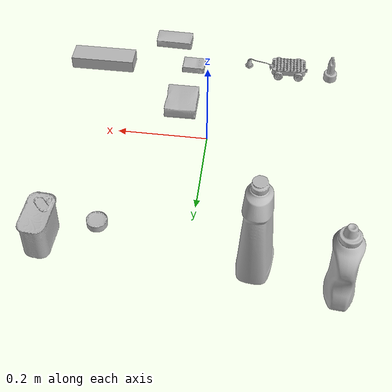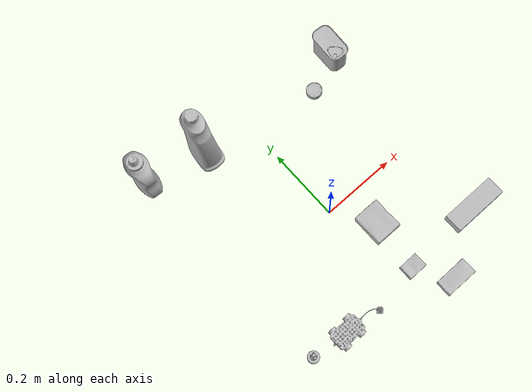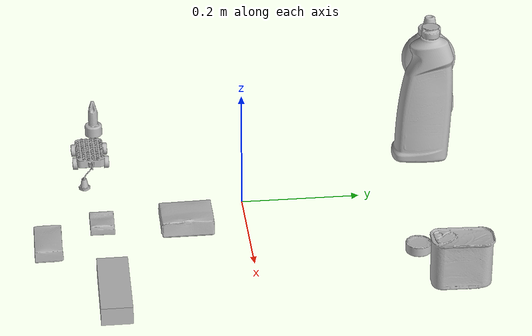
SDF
<?xml version="1.0" ?>
<sdf version="1.4">
  <world name="default">
    <light name="light1" type="point">
      <pose>0 0 1 0 0 0</pose>
      <diffuse>3 3 3 1</diffuse>
      <specular>3 3 3 1</specular>
    </light>
    <light name="light2" type="point">
      <pose>0 0.5 2 0 0 0</pose>
      <diffuse>1 1 1 1</diffuse>
      <specular>1 1 1 1</specular>
    </light>
    <light name="light3" type="point">
      <pose>0 0.5 2 0 0 0</pose>
      <diffuse>3 3 3 1</diffuse>
      <specular>3 3 3 1</specular>
    </light>
    <scene>
      <ambient>0.7 0.7 0.7</ambient>
    </scene>
    <model name="bottle1">
      <link name="link_bottle1">
        <collision name="default">
          <geometry>
            <mesh>
              <uri>model://bleach_cleanser/collision_meshes/collision.obj</uri>
              <scale>1.0 1.0 1.0</scale>
            </mesh>
          </geometry>
          <surface>
            <friction>
              <ode>
                <mu>0.5</mu>
                <mu2>0.5</mu2>
              </ode>
            </friction>
          </surface>
        </collision>
        <visual name="default">
          <geometry>
            <mesh>
              <uri>model://bleach_cleanser/visual_meshes/visual.dae</uri>
              <scale>1.0 1.0 1.0</scale>
            </mesh>
          </geometry>
        </visual>
        <inertial>
          <mass>0.8435376882553101</mass>
          <pose>0.00012193185102660209 0.0037838835269212723 -0.02442161925137043 -0.0738167136291003 0.00042011570398771517 -0.0068750683244174</pose>
          <inertia>
            <ixx>0.0041056215</ixx>
            <iyy>0.0038258375</iyy>
            <izz>0.0007019545</izz>
            <ixy>0</ixy>
            <ixz>0</ixz>
            <iyz>0</iyz>
          </inertia>
        </inertial>
      </link>
      <pose>-0.1293705701828003 0.32986220717430115 0.125770702958107 -0.0022205969148472527 0.002888732046555626 -0.08950297327741501</pose>
    </model>
    <model name="bottle2">
      <link name="link_bottle2">
        <collision name="default">
          <geometry>
            <mesh>
              <uri>model://mustard_bottle/collision_meshes/collision.obj</uri>
              <scale>1.0 1.0 1.0</scale>
            </mesh>
          </geometry>
          <surface>
            <friction>
              <ode>
                <mu>0.5</mu>
                <mu2>0.5</mu2>
              </ode>
            </friction>
          </surface>
        </collision>
        <visual name="default">
          <geometry>
            <mesh>
              <uri>model://mustard_bottle/visual_meshes/visual.dae</uri>
              <scale>1.0 1.0 1.0</scale>
            </mesh>
          </geometry>
        </visual>
        <inertial>
          <mass>0.5862947106361389</mass>
          <pose>0.0005032453336752951 -0.00015647400869056582 -0.01747579500079155 0.0004182326333961274 0.0009465780125852031 0.02485369627950655</pose>
          <inertia>
            <ixx>0.0016280604</ixx>
            <iyy>0.001428485</iyy>
            <izz>0.00042907606</izz>
            <ixy>0</ixy>
            <ixz>0</ixz>
            <iyz>0</iyz>
          </inertia>
        </inertial>
      </link>
      <pose>-0.2909773588180542 0.3694293797016144 0.09614808112382889 0.0010634771575790168 -0.0010442996821329723 -0.07642507765330066</pose>
    </model>
    <model name="toy1">
      <link name="link_toy1">
        <collision name="default">
          <geometry>
            <mesh>
              <uri>model://d_toy_airplane/collision_meshes/collision.obj</uri>
              <scale>1.0 1.0 1.0</scale>
            </mesh>
          </geometry>
          <surface>
            <friction>
              <ode>
                <mu>0.5</mu>
                <mu2>0.5</mu2>
              </ode>
            </friction>
          </surface>
        </collision>
        <visual name="default">
          <geometry>
            <mesh>
              <uri>model://d_toy_airplane/visual_meshes/visual.dae</uri>
              <scale>1.0 1.0 1.0</scale>
            </mesh>
          </geometry>
        </visual>
        <inertial>
          <mass>0.016342557966709137</mass>
          <pose>9.410292841494083e-05 -5.809347931062803e-05 -0.011728093959391117 0.0002665850352305412 0.004678995185611379 0.5193821656772198</pose>
          <inertia>
            <ixx>4.8991824e-06</ixx>
            <iyy>4.9028777e-06</iyy>
            <izz>1.4790946e-06</izz>
            <ixy>0</ixy>
            <ixz>0</ixz>
            <iyz>0</iyz>
          </inertia>
        </inertial>
      </link>
      <pose>-0.26999568939208984 -0.23996877670288086 0.03333889693021774 3.2641392143889736e-05 -0.00011554647266761172 0.05990463532322526</pose>
    </model>
    <model name="toy2">
      <link name="link_toy2">
        <collision name="default">
          <geometry>
            <mesh>
              <uri>model://g_lego_duplo/collision_meshes/collision.obj</uri>
              <scale>0.5 0.5 0.5</scale>
            </mesh>
          </geometry>
          <surface>
            <friction>
              <ode>
                <mu>0.5</mu>
                <mu2>0.5</mu2>
              </ode>
            </friction>
          </surface>
        </collision>
        <visual name="default">
          <geometry>
            <mesh>
              <uri>model://g_lego_duplo/visual_meshes/visual.dae</uri>
              <scale>0.5 0.5 0.5</scale>
            </mesh>
          </geometry>
        </visual>
        <inertial>
          <mass>0.06075087562203407</mass>
          <pose>-0.02502383105456829 0.0008777320035733283 0.0019403373589739203 0.010962969944672394 0.038108282316868566 -0.09653022106038826</pose>
          <inertia>
            <ixx>2.2007183e-05</ixx>
            <iyy>6.65348e-05</iyy>
            <izz>8.323752e-05</izz>
            <ixy>0</ixy>
            <ixz>0</ixz>
            <iyz>0</iyz>
          </inertia>
        </inertial>
      </link>
      <pose>-0.13960640132427216 -0.25184720754623413 0.014996824786067009 -6.240008379361557e-05 -0.0036883769569304057 0.022327799401519407</pose>
    </model>
    <model name="can1">
      <link name="link_can1">
        <collision name="default">
          <geometry>
            <mesh>
              <uri>model://potted_meat_can/collision_meshes/collision.obj</uri>
              <scale>1.0 1.0 1.0</scale>
            </mesh>
          </geometry>
          <surface>
            <friction>
              <ode>
                <mu>0.5</mu>
                <mu2>0.5</mu2>
              </ode>
            </friction>
          </surface>
        </collision>
        <visual name="default">
          <geometry>
            <mesh>
              <uri>model://potted_meat_can/visual_meshes/visual.dae</uri>
              <scale>1.0 1.0 1.0</scale>
            </mesh>
          </geometry>
        </visual>
        <inertial>
          <mass>0.20078136026859283</mass>
          <pose>0.00022888144303578883 -5.9891190176131204e-05 -0.0006367445457726717 -0.02809335636395505 -0.007232596981483405 0.015406261474000347</pose>
          <inertia>
            <ixx>0.0002582842</ixx>
            <iyy>0.00015692727</iyy>
            <izz>0.0001878526</izz>
            <ixy>0</ixy>
            <ixz>0</ixz>
            <iyz>0</iyz>
          </inertia>
        </inertial>
      </link>
      <pose>0.28989899158477783 0.3200114369392395 0.04212801158428192 -3.526003253505321e-08 -4.359960247223023e-07 -0.05955356596419757</pose>
    </model>
    <model name="can2">
      <link name="link_can2">
        <collision name="default">
          <geometry>
            <mesh>
              <uri>model://tuna_fish_can/collision_meshes/collision.obj</uri>
              <scale>0.5 0.5 0.5</scale>
            </mesh>
          </geometry>
          <surface>
            <friction>
              <ode>
                <mu>0.5</mu>
                <mu2>0.5</mu2>
              </ode>
            </friction>
          </surface>
        </collision>
        <visual name="default">
          <geometry>
            <mesh>
              <uri>model://tuna_fish_can/visual_meshes/visual.dae</uri>
              <scale>0.5 0.5 0.5</scale>
            </mesh>
          </geometry>
        </visual>
        <inertial>
          <mass>0.014736190438270569</mass>
          <pose>-2.036184559983667e-05 -7.256420758494642e-06 -0.0005269023822620511 -0.0017944748482382063 0.00017166274907885265 0.24056368509195397</pose>
          <inertia>
            <ixx>1.992355e-06</ixx>
            <iyy>1.9840513e-06</iyy>
            <izz>3.409204e-06</izz>
            <ixy>0</ixy>
            <ixz>0</ixz>
            <iyz>0</iyz>
          </inertia>
        </inertial>
      </link>
      <pose>0.18997719883918762 0.27002495527267456 0.008520000614225864 -7.526049656396914e-09 2.142799470526851e-08 -0.09313584909676073</pose>
    </model>
    <model name="box1">
      <link name="link_box1">
        <collision name="default">
          <geometry>
            <mesh>
              <uri>model://sugar_box/collision_meshes/collision.obj</uri>
              <scale>0.5 0.5 0.5</scale>
            </mesh>
          </geometry>
          <surface>
            <friction>
              <ode>
                <mu>0.5</mu>
                <mu2>0.5</mu2>
              </ode>
            </friction>
          </surface>
        </collision>
        <visual name="default">
          <geometry>
            <mesh>
              <uri>model://sugar_box/visual_meshes/visual.dae</uri>
              <scale>0.5 0.5 0.5</scale>
            </mesh>
          </geometry>
        </visual>
        <inertial>
          <mass>0.12222740799188614</mass>
          <pose>0.0005171863595023751 1.9245549992774613e-05 -0.00018182404164690524 -0.000404625834306888 0.0010506637544316808 0.0026153790219515644</pose>
          <inertia>
            <ixx>2.5459884e-05</ixx>
            <iyy>8.229157e-05</iyy>
            <izz>9.851283e-05</izz>
            <ixy>0</ixy>
            <ixz>0</ixz>
            <iyz>0</iyz>
          </inertia>
        </inertial>
      </link>
      <pose>0.11952274292707443 -0.33013349771499634 0.011399305425584316 0.0007749196544721369 -0.023433189689715115 0.00023480186116287666</pose>
    </model>
    <model name="box2">
      <link name="link_box2">
        <collision name="default">
          <geometry>
            <mesh>
              <uri>model://jenga/collision_meshes/collision.obj</uri>
              <scale>1.0 1.0 1.0</scale>
            </mesh>
          </geometry>
          <surface>
            <friction>
              <ode>
                <mu>0.5</mu>
                <mu2>0.5</mu2>
              </ode>
            </friction>
          </surface>
        </collision>
        <visual name="default">
          <geometry>
            <mesh>
              <uri>model://jenga/visual_meshes/visual.dae</uri>
              <scale>1.0 1.0 1.0</scale>
            </mesh>
          </geometry>
        </visual>
        <inertial>
          <mass>0.17645145952701569</mass>
          <pose>-2.502855807051674e-07 -0.00010250011109746993 -4.0923405322246253e-05 0.0 -7.342155186052628e-07 0.0</pose>
          <inertia>
            <ixx>4.8828406e-05</ixx>
            <iyy>0.00033085994</iyy>
            <izz>0.00035322108</izz>
            <ixy>0</ixy>
            <ixz>0</ixz>
            <iyz>0</iyz>
          </inertia>
        </inertial>
      </link>
      <pose>0.2800004780292511 -0.22989749908447266 0.014999995008111 2.1324209448845652e-09 -2.6814743908325463e-09 -1.942284200169023e-07</pose>
    </model>
    <model name="box3">
      <link name="link_box3">
        <collision name="default">
          <geometry>
            <mesh>
              <uri>model://gelatin_box/collision_meshes/collision.obj</uri>
              <scale>1.0 1.0 1.0</scale>
            </mesh>
          </geometry>
          <surface>
            <friction>
              <ode>
                <mu>0.5</mu>
                <mu2>0.5</mu2>
              </ode>
            </friction>
          </surface>
        </collision>
        <visual name="default">
          <geometry>
            <mesh>
              <uri>model://gelatin_box/visual_meshes/visual.dae</uri>
              <scale>1.0 1.0 1.0</scale>
            </mesh>
          </geometry>
        </visual>
        <inertial>
          <mass>0.13059620559215546</mass>
          <pose>0.0004319618456065655 0.00011156871914863586 -0.0003640321083366871 -0.0010503721928909568 -0.00475581775899517 0.01644055574591333</pose>
          <inertia>
            <ixx>9.219027e-05</ixx>
            <iyy>6.585102e-05</iyy>
            <izz>0.00014033413</izz>
            <ixy>0</ixy>
            <ixz>0</ixz>
            <iyz>0</iyz>
          </inertia>
        </inertial>
      </link>
      <pose>0.06995124369859695 -0.10007171332836151 0.01516831386834383 0.005597474086482134 -0.007304569902846906 2.7424802454044775e-06</pose>
    </model>
    <model name="box4">
      <link name="link_box4">
        <collision name="default">
          <geometry>
            <mesh>
              <uri>model://cracker_box/collision_meshes/collision.obj</uri>
              <scale>0.25 0.25 0.25</scale>
            </mesh>
          </geometry>
          <surface>
            <friction>
              <ode>
                <mu>0.5</mu>
                <mu2>0.5</mu2>
              </ode>
            </friction>
          </surface>
        </collision>
        <visual name="default">
          <geometry>
            <mesh>
              <uri>model://cracker_box/visual_meshes/visual.dae</uri>
              <scale>0.25 0.25 0.25</scale>
            </mesh>
          </geometry>
        </visual>
        <inertial>
          <mass>0.04771818593144417</mass>
          <pose>0.0002366032567806542 6.358561950037256e-05 -0.00042573839891701937 -0.00031620769108308636 -0.011106489600173282 0.0025467959336867136</pose>
          <inertia>
            <ixx>7.5858593e-06</ixx>
            <iyy>1.2525745e-05</iyy>
            <izz>1.7875387e-05</izz>
            <ixy>0</ixy>
            <ixz>0</ixz>
            <iyz>0</iyz>
          </inertia>
        </inertial>
      </link>
      <pose>0.05993372201919556 -0.2398490309715271 0.009120452217757702 -0.011788076470950513 -0.007367117674444964 5.26280600115722e-05</pose>
    </model>
  </world>
</sdf>
